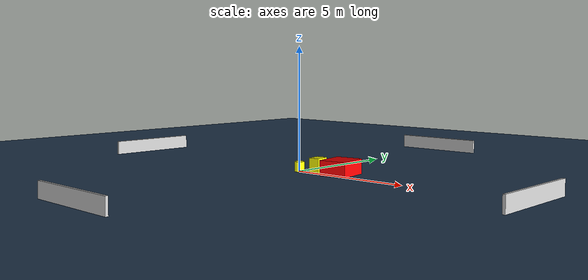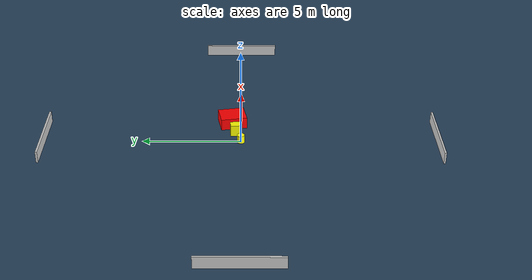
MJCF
<?xml version="1.0" ?>
<mujoco model="generated_environment">
  <option timestep="0.01" integrator="RK4" cone="elliptic"/>
  <default>
    <geom density="1"/>
  </default>
  <asset>
    <texture builtin="gradient" height="3072" name="skybox" rgb1="0.3 0.5 0.7" rgb2="0 0 0" type="skybox" width="512"/>
    <texture builtin="checker" height="300" name="groundplane" rgb1="0.2 0.3 0.4" rgb2="0.1 0.2 0.3" type="2d" width="300"/>
    <material name="groundplane" reflectance="0.2" texrepeat="5 5" texture="groundplane"/>
  </asset>
  <worldbody>
    <light dir="0 0 -1" directional="true" pos="0 0 1.5"/>
    <geom condim="3" friction="0.5 0.005 0.001" material="groundplane" name="floor" pos="0 0 0" size="0 0 0.05" type="plane"/>
    <body name="walls">
      <geom name="wall_1" condim="4" pos="-10.0 0.0 0.3" rgba="0.800000011920929 0.800000011920929 0.800000011920929 1.0" size="0.05 2.0 0.3" type="box"/>
      <geom name="wall_2" condim="4" pos="10.0 0.0 0.3" rgba="0.800000011920929 0.800000011920929 0.800000011920929 1.0" size="0.05 2.0 0.3" type="box"/>
      <geom name="wall_3" condim="4" pos="0.0 -10.0 0.3" rgba="0.800000011920929 0.800000011920929 0.800000011920929 1.0" size="2.0 0.05 0.3" type="box"/>
      <geom name="wall_4" condim="4" pos="0.0 10.0 0.3" rgba="0.800000011920929 0.800000011920929 0.800000011920929 1.0" size="2.0 0.05 0.3" type="box"/>
    </body>
    <body name="robot">
      <joint name="joint_x" type="slide" pos="0 0 0" axis="1 0 0"/>
      <joint name="joint_y" type="slide" pos="0 0 0" axis="0 1 0"/>
      <geom name="robot" type="cylinder" pos="0.0 0.0 0.2" size="0.2 0.2 0.0" mass="5.0" friction="1.0 0.005 0.0001" condim="4" rgba="1.0 1.0 0.0 1.0"/>
    </body>
    <body name="obstacle_1_movable">
      <geom name="obstacle_1_movable" condim="4" pos="0.7690391646240684 0.24520177867277235 0.3" euler="0 0 186.45852957107957" friction="0.0 0.005 0.001" rgba="1.0 1.0 0.0 1.0" size="0.21711516797010652 0.296581845804278 0.3" type="box" mass="0.1"/>
      <joint type="free"/>
    </body>
    <body name="obstacle_2_static">
      <geom name="obstacle_2_static" condim="4" pos="1.796114020387624 0.44314543792881084 0.3" euler="0 0 100.14494779093377" friction="0.0 0.005 0.001" rgba="1.0 0.0 0.0 1.0" size="0.6715803439398793 0.5494640603209355 0.3" type="box"/>
    </body>
  </worldbody>
  <actuator>
    <motor name="actuator_x" joint="joint_x" gear="1" ctrlrange="-1 1"/>
    <motor name="actuator_y" joint="joint_y" gear="1" ctrlrange="-1 1"/>
  </actuator>
</mujoco>
